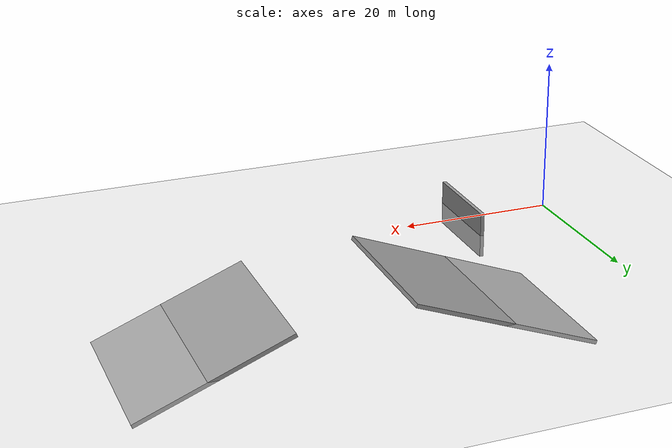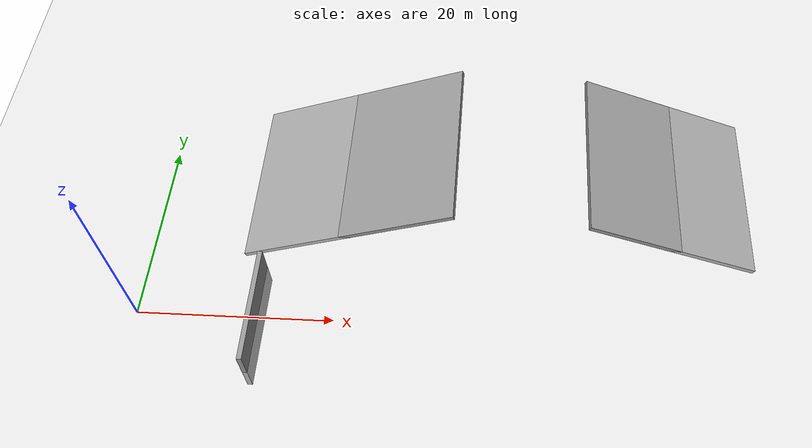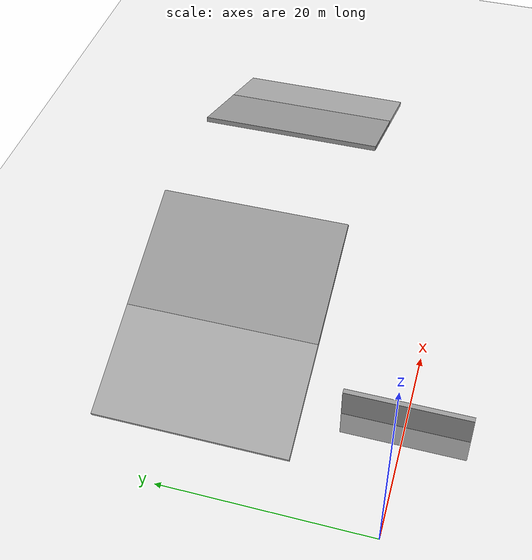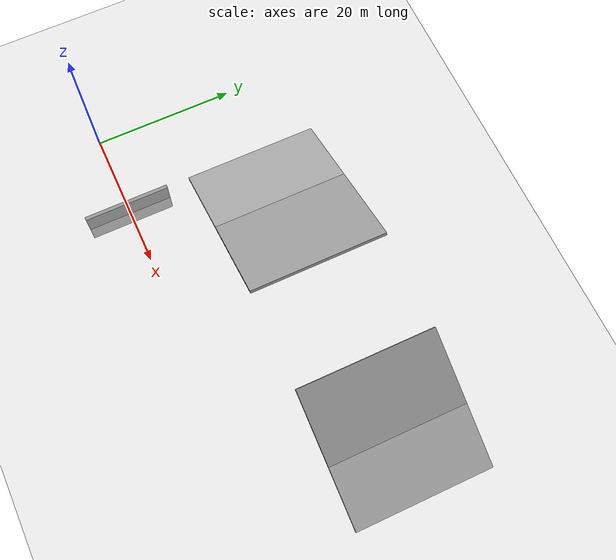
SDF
<sdf version='1.7'>
  <world name='default'>
    <light name='sun' type='directional'>
      <cast_shadows>1</cast_shadows>
      <pose>0 0 10 0 -0 0</pose>
      <diffuse>0.8 0.8 0.8 1</diffuse>
      <specular>0.2 0.2 0.2 1</specular>
      <attenuation>
        <range>1000</range>
        <constant>0.9</constant>
        <linear>0.01</linear>
        <quadratic>0.001</quadratic>
      </attenuation>
      <direction>-0.5 0.1 -0.9</direction>
    </light>

    <model name='ground_plane'>
      <static>1</static>
      <link name='link'>
        <collision name='collision'>
          <geometry>
            <plane>
              <normal>0 0 1</normal>
              <size>1000 1000</size>
            </plane>
          </geometry>
        </collision>
        <visual name='visual'>
          <cast_shadows>0</cast_shadows>
          <geometry>
            <plane>
              <normal>0 0 1</normal>
              <size>100 100</size>
            </plane>
          </geometry>
          <material>
            <script>
              <uri>file://media/materials/scripts/gazebo.material</uri>
              <name>Gazebo/Grey</name>
            </script>
          </material>
        </visual>
      </link>
    </model>

     <model name="ramp">
      <static>true</static>
      <link name="ramp_link">
        <pose>20 20 0 0 1.1972 0</pose>
        <collision name="wall_collision">
          <geometry>
            <box>
              <size>0.5 20 25</size> <!-- length, thickness, height -->
            </box>
          </geometry>
        </collision>
        <visual name="wall_visual">
          <geometry>
            <box>
              <size>0.5 20 25</size>
            </box>
          </geometry>
          <material>
            <script>
              <uri>file://media/materials/scripts/gazebo.material</uri>
              <name>Gazebo/Gray</name>
            </script>
          </material>
        </visual>
      </link>
    </model>

    <model name="ramp2">
      <static>true</static>
      <link name="ramp2_link">
        <pose>55 20 0 0 -1.1972 0</pose>
        <collision name="wall_collision">
          <geometry>
            <box>
              <size>0.5 20 20</size> <!-- length, thickness, height -->
            </box>
          </geometry>
        </collision>
        <visual name="wall_visual">
          <geometry>
            <box>
              <size>0.5 20 20</size>
            </box>
          </geometry>
          <material>
            <script>
              <uri>file://media/materials/scripts/gazebo.material</uri>
              <name>Gazebo/Gray</name>
            </script>
          </material>
        </visual>
      </link>
    </model>

    <model name="wall_1">
      <static>true</static>
      <link name="wall_link">
        <pose>12 0 0 0 0 0</pose>
        <collision name="wall_collision">
          <geometry>
            <box>
              <size>0.5 12 6</size> <!-- length, thickness, height -->
            </box>
          </geometry>
        </collision>
        <visual name="wall_visual">
          <geometry>
            <box>
              <size>0.5 12 6</size>
            </box>
          </geometry>
          <material>
            <script>
              <uri>file://media/materials/scripts/gazebo.material</uri>
              <name>Gazebo/Gray</name>
            </script>
          </material>
        </visual>
      </link>
    </model>

    <gravity>0 0 -9.8</gravity>
    <physics type='ode'>
      <max_step_size>0.001</max_step_size>
      <real_time_factor>1</real_time_factor>
      <real_time_update_rate>1000</real_time_update_rate>
    </physics>
    <scene>
      <ambient>0.4 0.4 0.4 1</ambient>
      <background>0.7 0.7 0.7 1</background>
      <shadows>1</shadows>
    </scene>
    <wind/>
    <spherical_coordinates>
      <surface_model>EARTH_WGS84</surface_model>
      <latitude_deg>0</latitude_deg>
      <longitude_deg>0</longitude_deg>
      <elevation>0</elevation>
      <heading_deg>0</heading_deg>
    </spherical_coordinates>

  </world>
</sdf>
